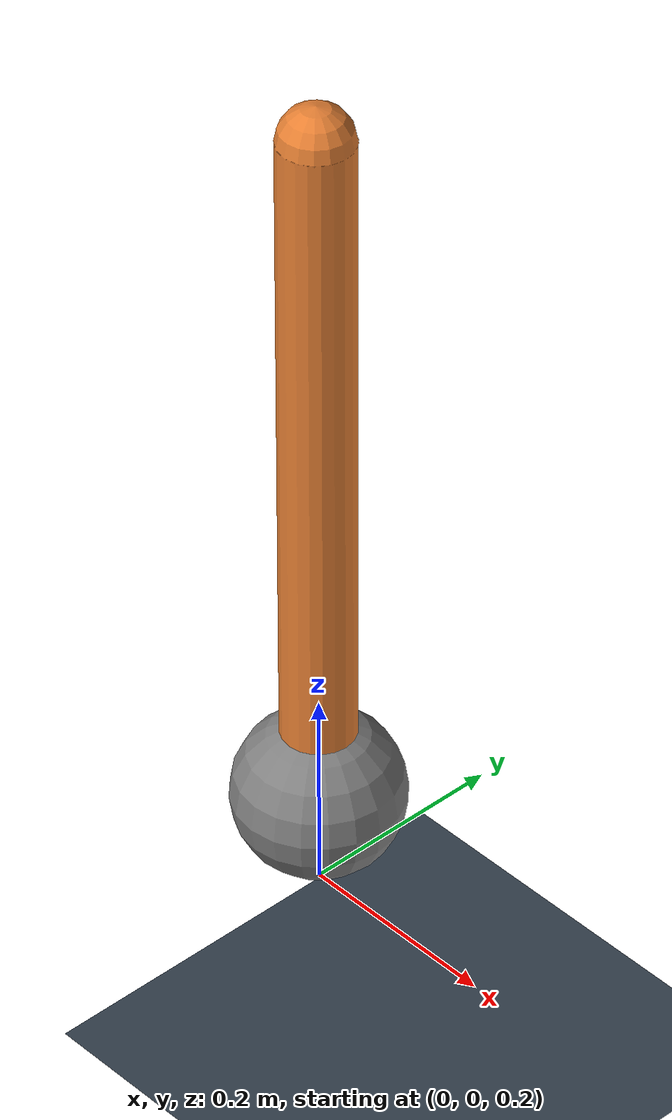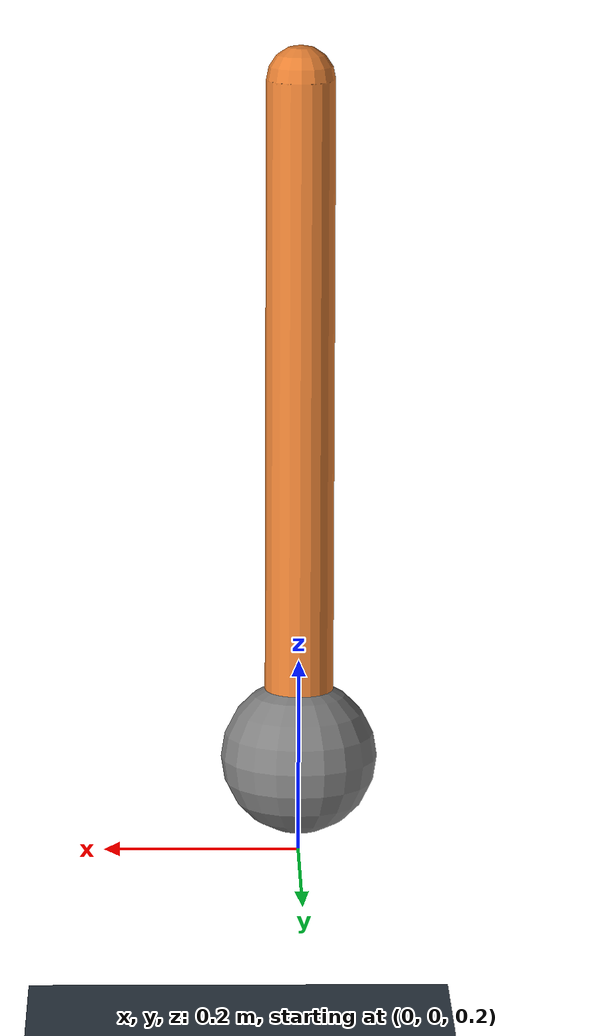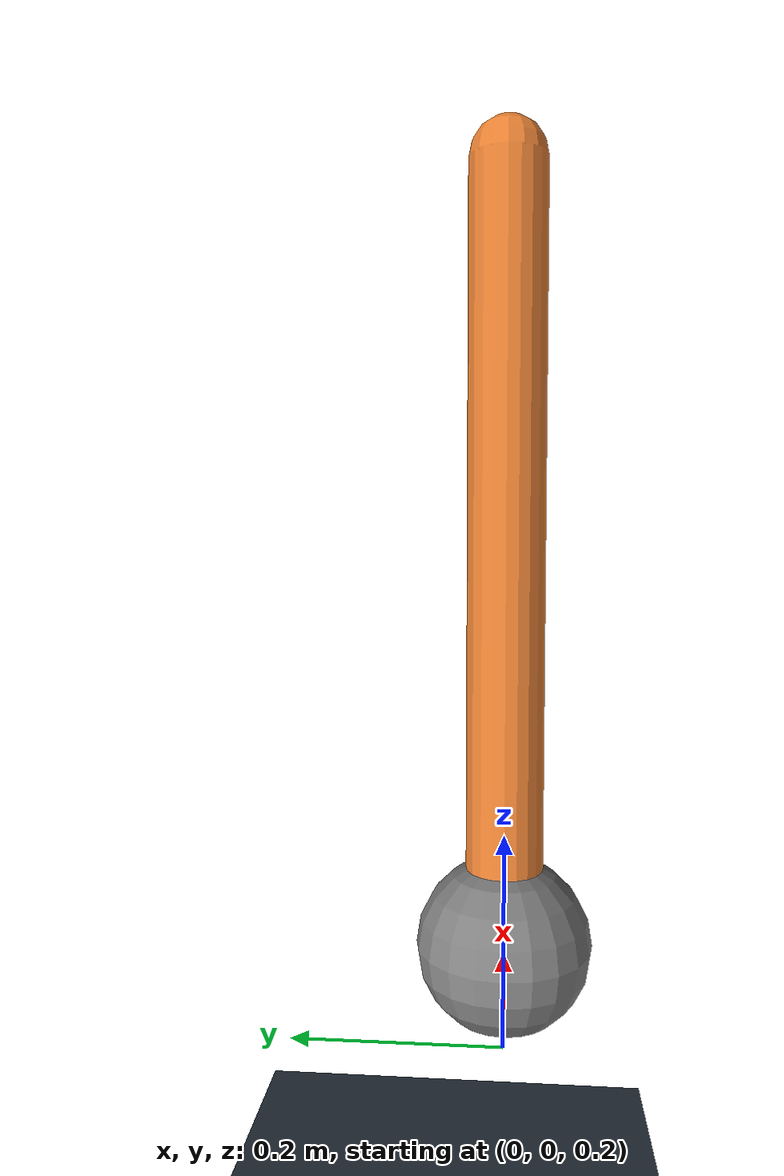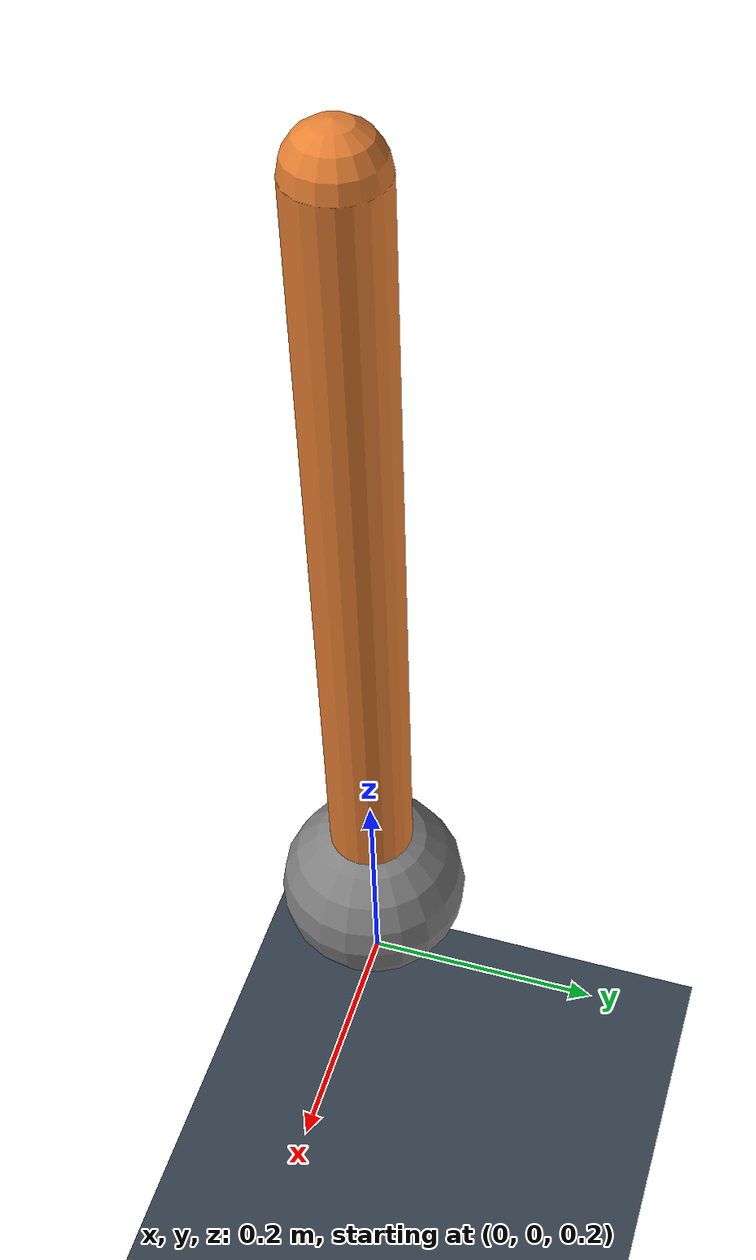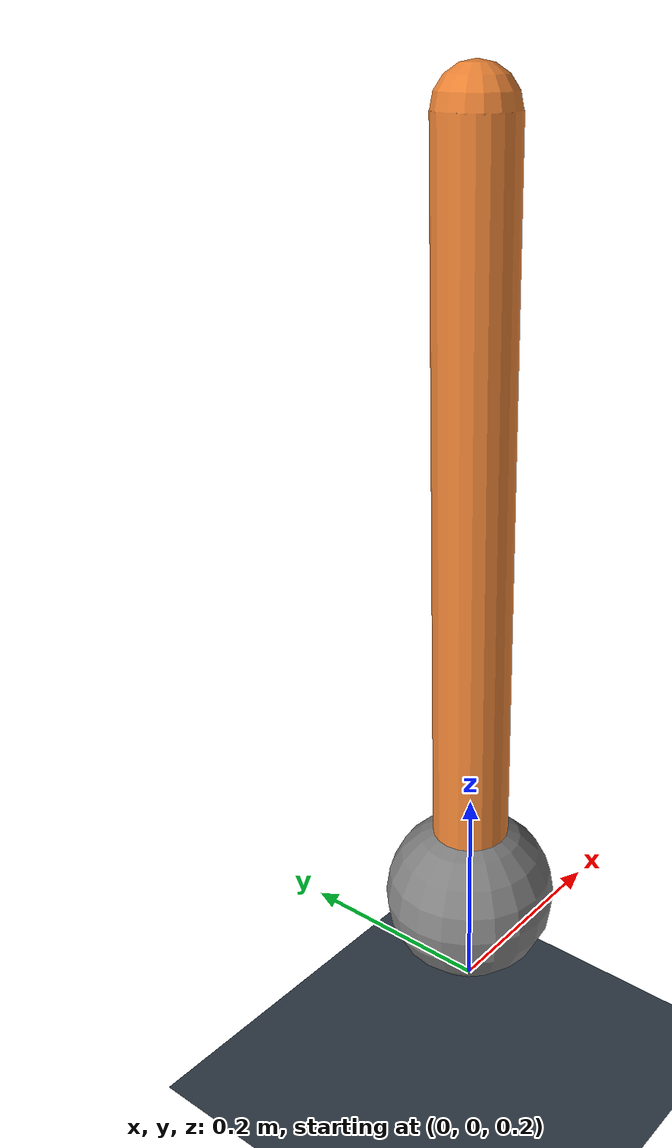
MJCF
<mujoco model="gar-pendulum">
  <option timestep="0.002" gravity="0 0 -9.81"/>
  <worldbody>
    <light pos="0 0 2"/>
    <geom type="plane" size="2 2 0.1" rgba="0.2 0.25 0.3 1"/>
    <body name="pivot" pos="0 0 1">
      <joint name="hinge" type="hinge" axis="0 1 0" damping="0.05"/>
      <geom type="capsule" fromto="0 0 0 0 0 -0.7" size="0.035" rgba="0.9 0.5 0.2 1"/>
      <geom type="sphere" pos="0 0 -0.7" size="0.08" mass="0.2"/>
    </body>
  </worldbody>
  <actuator>
    <motor name="hip_motor" joint="hinge" gear="0.5"/>
  </actuator>
</mujoco>
